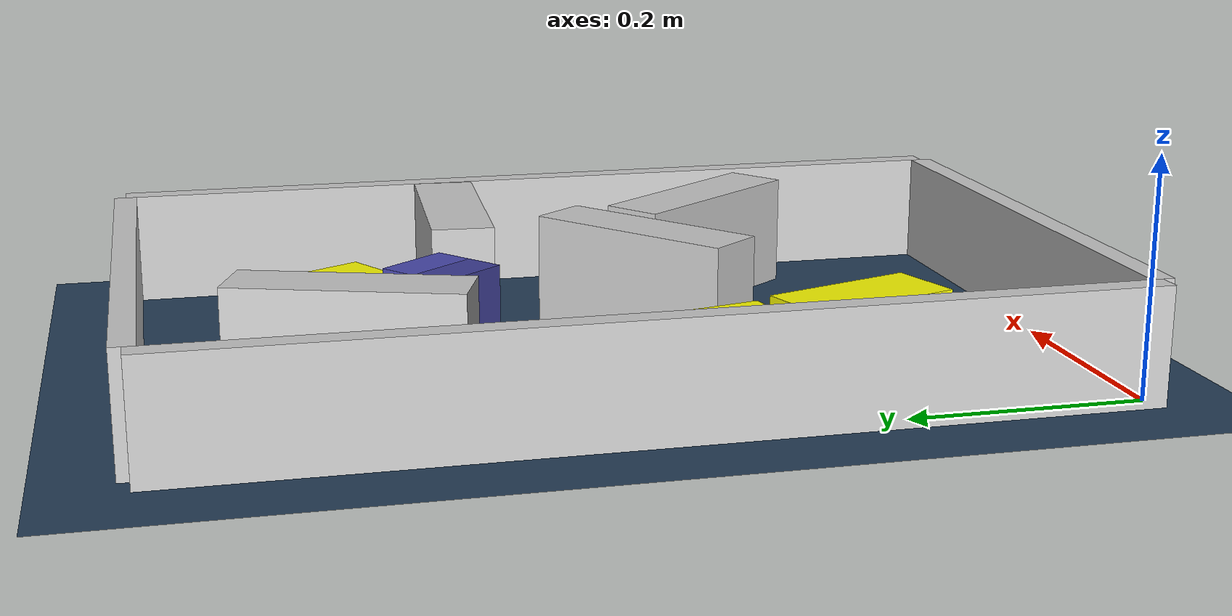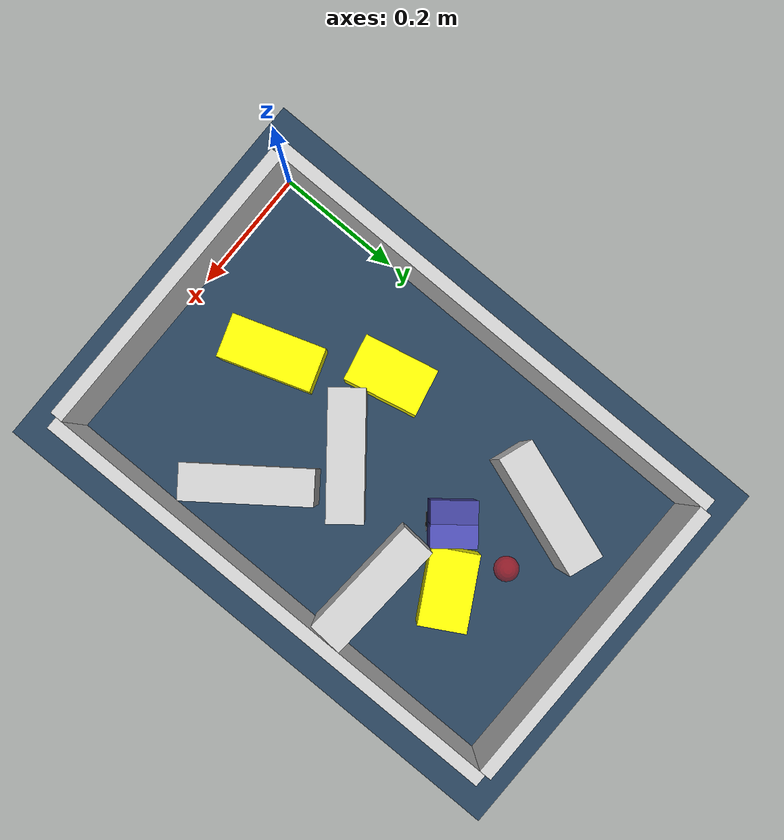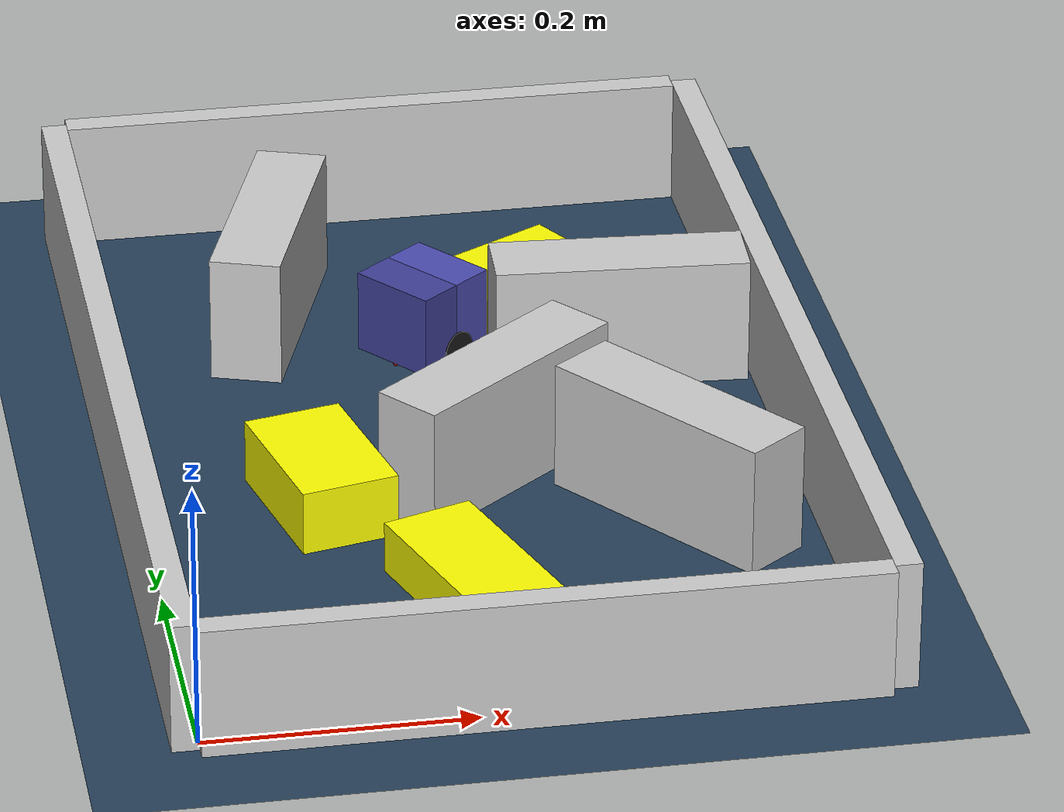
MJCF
<?xml version='1.0' encoding='utf-8'?>
<mujoco model="real_buildable">
  <compiler angle="degree" />
  <option timestep="0.002" integrator="implicitfast" iterations="100" cone="elliptic" />
  <default>
    <geom density="1" />
  </default>
  <asset>
    <texture builtin="gradient" height="3072" rgb1="0.3 0.5 0.7" rgb2="0 0 0" type="skybox" width="512" />
    <texture builtin="checker" height="300" mark="edge" markrgb="0.8 0.8 0.8" name="groundplane" rgb1="0.2 0.3 0.4" rgb2="0.1 0.2 0.3" type="2d" width="300" />
    <material name="groundplane" reflectance="0.2" texrepeat="5 5" texture="groundplane" texuniform="true" />
  </asset>
  <worldbody>
    <light dir="0 0 -1" directional="true" pos="0 0 1.5" />
    <geom name="floor" type="plane" condim="4" friction="0.5 0.005 0.001" material="groundplane" size="0 0 0.05" />
    <body name="walls">
      <geom name="wall_boundary_left" type="box" condim="4" friction="1.0 0.005 0.0001" rgba="0.8 0.8 0.8 1" pos="-0.010000 0.387500 0.050000" euler="0 0 0.000000" size="0.010000 0.397500 0.050000" />
      <geom name="wall_boundary_right" type="box" condim="4" friction="1.0 0.005 0.0001" rgba="0.8 0.8 0.8 1" pos="0.500000 0.387500 0.050000" euler="0 0 0.000000" size="0.010000 0.397500 0.050000" />
      <geom name="wall_boundary_bottom" type="box" condim="4" friction="1.0 0.005 0.0001" rgba="0.8 0.8 0.8 1" pos="0.245000 -0.010000 0.050000" euler="0 0 0.000000" size="0.245000 0.010000 0.050000" />
      <geom name="wall_boundary_top" type="box" condim="4" friction="1.0 0.005 0.0001" rgba="0.8 0.8 0.8 1" pos="0.245000 0.785000 0.050000" euler="0 0 0.000000" size="0.245000 0.010000 0.050000" />
      <geom name="wall_inner_1" type="box" condim="4" friction="1.0 0.005 0.0001" rgba="0.8 0.8 0.8 1" pos="0.268119 0.341436 0.050000" euler="0 0 38.803597" size="0.097500 0.027500 0.050000" />
      <geom name="wall_inner_2" type="box" condim="4" friction="1.0 0.005 0.0001" rgba="0.8 0.8 0.8 1" pos="0.390655 0.258899 0.050000" euler="0 0 -53.029884" size="0.097500 0.027500 0.050000" />
      <geom name="wall_inner_3" type="box" condim="4" friction="1.0 0.005 0.0001" rgba="0.8 0.8 0.8 1" pos="0.391000 0.492000 0.050000" euler="0 0 176.500000" size="0.097500 0.027500 0.050000" />
      <geom name="wall_inner_4" type="box" condim="4" friction="1.0 0.005 0.0001" rgba="0.8 0.8 0.8 1" pos="0.138000 0.613000 0.050000" euler="0 0 71.100000" size="0.097500 0.027500 0.050000" />
    </body>
    <body name="car" pos="0.24417601093485936 0.52488532050447578 0.01" quat="0.94365779129377203 0 0 0.33092291085774017">
      <freejoint name="car_freejoint" />
      <inertial pos="0 0 0.0375" mass="0.35" diaginertia="0.000266 0.000266 0.000286" />
      <geom name="front_chassis_collision" type="box" pos="0.0175 0 0.0375" size="0.0175 0.035 0.0325" rgba="0.3 0.3 0.7 1" />
      <geom name="rear_chassis_collision" type="box" pos="-0.0175 0 0.0375" size="0.0175 0.035 0.0325" rgba="0.25 0.25 0.6 1" />
      <geom name="front_marker" type="box" pos="0.034 0 0.0505" size="0.002 0.015 0.01" rgba="1 0.2 0.2 1" contype="0" conaffinity="0" />
      <body name="rear_support_body" pos="-0.03 0 0.0025">
        <joint name="rear_caster_joint" type="ball" damping="0.0001" />
        <inertial pos="0 0 0" mass="0.025" diaginertia="0.000001 0.000001 0.000001" />
        <geom name="rear_support" type="sphere" pos="0 0 0" size="0.0025" friction="0 0 0" rgba="0.7 0.1 0.1 1" />
      </body>
      <body name="front_support_body" pos="0.03 0 0.0025">
        <joint name="front_caster_joint" type="ball" damping="0.0001" />
        <inertial pos="0 0 0" mass="0.025" diaginertia="0.000001 0.000001 0.000001" />
        <geom name="front_support" type="sphere" pos="0 0 0" size="0.0025" friction="0 0 0" rgba="0.1 0.7 0.1 1" />
      </body>
      <body name="left_wheel" pos="0 0.0375 0.015">
        <inertial pos="0 0 0" mass="0.05" diaginertia="0.000003 0.000006 0.000003" />
        <joint name="left_wheel_joint" type="hinge" axis="0 1 0" damping="0.01" armature="0.0001" />
        <geom name="left_wheel_collision" type="cylinder" size="0.015 0.0005" euler="90 0 0" rgba="0.1 0.1 0.1 1" />
      </body>
      <body name="right_wheel" pos="0 -0.0375 0.015">
        <inertial pos="0 0 0" mass="0.05" diaginertia="0.000003 0.000006 0.000003" />
        <joint name="right_wheel_joint" type="hinge" axis="0 1 0" damping="0.01" armature="0.0001" />
        <geom name="right_wheel_collision" type="cylinder" size="0.015 0.0005" euler="90 0 0" rgba="0.1 0.1 0.1 1" />
      </body>
    </body>
    <body name="obstacle_0_movable">
      <geom name="obstacle_0_movable" condim="4" pos="0.1336907477641136 0.31390570436390314 0.025000000000000001" friction="1 0.005 0.0001" rgba="1 1 0 1" size="0.037500 0.060000 0.025000" type="box" mass="0.1" quat="0.99376679015576219 0 0 0.11147899705107334" />
      <joint type="free" />
    </body>
    <body name="obstacle_1_movable">
      <geom name="obstacle_1_movable" condim="4" pos="0.32407360074000496 0.58501077636440946 0.025000000000000001" friction="1 0.005 0.0001" rgba="1 1 0 1" size="0.037500 0.060000 0.025000" type="box" mass="0.1" quat="0.86383306528191151 0 0 -0.50377816082642646" />
      <joint type="free" />
    </body>
    <body name="obstacle_2_movable">
      <geom name="obstacle_2_movable" condim="4" pos="0.22213200000000002 0.15388500000000002 0.02" friction="1 0.005 0.0001" rgba="1 1 0 1" size="0.035000 0.075000 0.020000" type="box" mass="0.1" quat="0.98658857451371573 0 0 0.16322678897470938" />
      <joint type="free" />
    </body>
    <site name="goal" type="sphere" pos="0.245000 0.640000 0.0" size="0.02" rgba="1 0 0 0.5" />
  </worldbody>
  <actuator>
    <velocity name="left_wheel_drive" joint="left_wheel_joint" ctrlrange="-25 25" kv="0.75" forcerange="-0.5 0.5" />
    <velocity name="right_wheel_drive" joint="right_wheel_joint" ctrlrange="-25 25" kv="0.75" forcerange="-0.5 0.5" />
  </actuator>
</mujoco>
